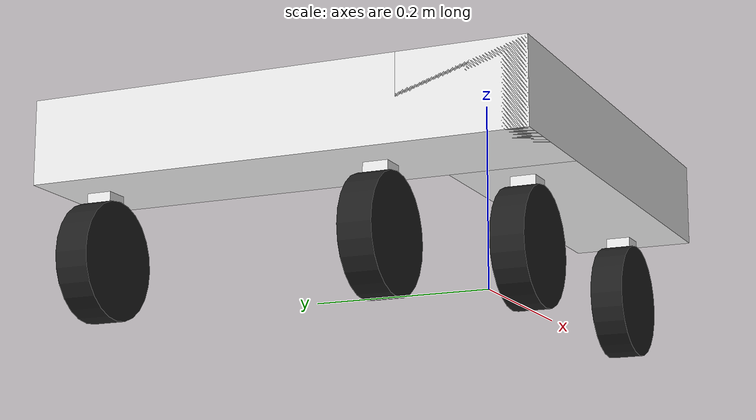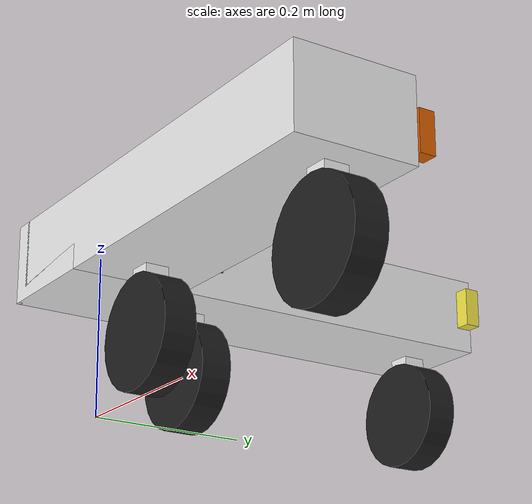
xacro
<?xml version="1.0"?>
<robot xmlns:xacro="http://www.ros.org/wiki/xacro" name="AR_0">

    <!-- robot parts -->
	<xacro:include filename="$(find ar_sim)/urdf/wheel.urdf.xacro" />
	<xacro:include filename="$(find ar_sim)/urdf/steering_column.urdf.xacro" />
    <xacro:include filename="$(find ar_sim)/urdf/arm.urdf.xacro" />

    <!-- actuation -->
    <xacro:include filename="$(find ar_sim)/urdf/transmission.urdf.xacro" />

    <!-- sensors -->
    <xacro:include filename="$(find ar_sim)/urdf/tof.urdf.xacro" />

    <!-- materials -->
    <xacro:include filename="$(find ar_sim)/urdf/materials.xacro" />

	<!-- PROPERTIES -->
	<!--All units in m-kg-s-radians unit system -->
	<xacro:property name="M_PI" value="3.1415926535897931" />
    <xacro:property name="M_PI_2" value="1.570796327" />
    <xacro:property name="M_PI_4" value="0.7853981635" />
	<xacro:property name="DEG_TO_RAD" value="0.017453293" />

	<!-- friction coefficients: https://www.engineeringtoolbox.com/friction-coefficients-d_778.html -->
	<xacro:property name="MU_1" value="0.8" />
	<xacro:property name="MU_2" value="0.8" />

	<!-- mass (kg) -->
	<xacro:property name="arm_mass" value="10" />
	<xacro:property name="steer_link_mass" value="0.5" />
	<xacro:property name="wheel_mass" value="4" />

	<!-- robot dimensions (m) -->
	<xacro:property name="robot_height" value="0.2" />
	<xacro:property name="axis_offset" value="0.125" />
	<xacro:property name="steer_link_width" value="0.03" />
	<xacro:property name="wheel_radius" value="0.07" />
	<xacro:property name="wheel_width" value="0.04" />
	<xacro:property name="arm_length" value="0.6" />
	<xacro:property name="arm_width" value="0.15" />
	<xacro:property name="arm_thickness" value="0.1" />
    <xacro:property name="steer_link_length" value="${arm_thickness/2+wheel_radius}" />

    <!-- sensor properties -->
    <xacro:property name="TOF_rate" value="30" /> <!-- Hz -->
    <xacro:property name="visualize_TOFs" value="true" />

	 <!-- Macros for calculating inertia -->
	<xacro:macro name="cylinder_inertia" params="m r h">
		<inertia  ixx="${m*(3*r*r+h*h)/12}" ixy = "0" ixz = "0"
		iyy="${m*(3*r*r+h*h)/12}" iyz = "0" izz="${m*r*r/2}" />
	</xacro:macro>

	<xacro:macro name="cuboid_inertia" params="m w h l">
		<inertia  ixx="${m*(h*h+l*l)/12}" ixy = "0" ixz = "0"
		iyy="${m*(w*w+l*l)/12}" iyz = "0" izz="${m*(h*h+w*w)/12}" />
	</xacro:macro>

	<!-- BASE FOOTPRINT -->
    <link name="base_footprint">
		<visual>
			<origin xyz="0 0 0" rpy="0 0 0" />
			<geometry>
				<box size="0.001 0.001 0.001" />
			</geometry>
		</visual>
	</link>

	<gazebo reference="base_footprint">
		<turnGravityOff>false</turnGravityOff>
	</gazebo>

	<!-- left arm -->
	<xacro:arm arm_name="left_arm" arm_length="${arm_length}" arm_width="${arm_width}"
						arm_thickness="${arm_thickness}" arm_mass="${arm_mass}"
						rotation_angle="0" X="${(arm_length-arm_width)/2}" Y="0" robot_height="${robot_height}" />

	<!-- right arm -->
	<xacro:arm arm_name="right_arm" arm_length="${arm_length}" arm_width="${arm_width}"
						arm_thickness="${arm_thickness}" arm_mass="${arm_mass}"
						rotation_angle="${M_PI_2}" X="0" Y="${(arm_length-arm_width)/2}" robot_height="${robot_height}" />

	<!-- Joint: connect arms to base -->
	<joint name="base_footprint_joint_l" type="fixed">
		<origin xyz="0 0 0" rpy="0 0 0" />
		<parent link="base_footprint"/>
		<child link="left_arm" />
	</joint>

	<joint name="base_footprint_joint_r" type="fixed">
		<origin xyz="0 0 0" rpy="0 0 0" />
		<parent link="base_footprint"/>
		<child link="right_arm" />
	</joint>

	<!-- steering link l1 -->
	<xacro:steering_column steering_link_name="steering_link_l1" steer_link_width=
		"${steer_link_width}" steer_link_length="${steer_link_length}" steer_link_mass="${steer_link_mass}" robot_height="${robot_height}" />

	<!-- steering link l2 -->
	<xacro:steering_column steering_link_name="steering_link_l2" steer_link_width=
		"${steer_link_width}" steer_link_length="${steer_link_length}" steer_link_mass="${steer_link_mass}" robot_height="${robot_height}" />

	<!-- steering link r1 -->
	<xacro:steering_column steering_link_name="steering_link_r1" steer_link_width=
		"${steer_link_width}" steer_link_length="${steer_link_length}" steer_link_mass="${steer_link_mass}" robot_height="${robot_height}" />

	<!-- steering link r2 -->
	<xacro:steering_column steering_link_name="steering_link_r2" steer_link_width=
		"${steer_link_width}" steer_link_length="${steer_link_length}" steer_link_mass="${steer_link_mass}" robot_height="${robot_height}" />

	<!-- yaw joint l1 -->
	<joint name="yaw_joint_l1" type="continuous">
		<parent link="left_arm"/>
		<child link="steering_link_l1"/>
		<origin xyz="${axis_offset} 0 0" rpy="0 0 ${M_PI}"/>
		<axis xyz="0 0 1"/>
	</joint>

	<!-- yaw joint l2 -->
	<joint name="yaw_joint_l2" type="continuous">
		<parent link="left_arm"/>
		<child link="steering_link_l2"/>
		<origin xyz="${arm_length-axis_offset} 0 0" rpy="0 0 ${M_PI}"/>
		<axis xyz="0 0 1"/>
	</joint>

	<!-- yaw joint r1 -->
	<joint name="yaw_joint_r1" type="continuous">
		<parent link="right_arm"/>
		<child link="steering_link_r1"/>
		<origin xyz="0 ${axis_offset} 0" rpy="0 0 ${M_PI}"/>
		<axis xyz="0 0 1"/>
	</joint>

	<!-- yaw joint r2 -->
	<joint name="yaw_joint_r2" type="continuous">
		<parent link="right_arm"/>
		<child link="steering_link_r2"/>
		<origin xyz="0 ${arm_length-axis_offset} 0" rpy="0 0 ${M_PI}"/>
		<axis xyz="0 0 1"/>
	</joint>

	<!-- wheel-r1 -->
	<xacro:wheel wheel_name="r1_wheel" wheel_width="${wheel_width}" wheel_radius="
		${wheel_radius}" wheel_mass="${wheel_mass}" MU_1="${MU_1}" MU_2="${MU_2}"
		M_PI_2="${M_PI_2}"/>

	<!-- wheel-r2 -->
	<xacro:wheel wheel_name="r2_wheel" wheel_width="${wheel_width}" wheel_radius="
		${wheel_radius}" wheel_mass="${wheel_mass}" MU_1="${MU_1}" MU_2="${MU_2}"
		M_PI_2="${M_PI_2}"/>

	<!-- wheel-l1 -->
	<xacro:wheel wheel_name="l1_wheel" wheel_width="${wheel_width}" wheel_radius="
		${wheel_radius}" wheel_mass="${wheel_mass}" MU_1="${MU_1}" MU_2="${MU_2}"
		M_PI_2="${M_PI_2}"/>

	<!-- wheel-l2 -->
	<xacro:wheel wheel_name="l2_wheel" wheel_width="${wheel_width}" wheel_radius="
		${wheel_radius}" wheel_mass="${wheel_mass}" MU_1="${MU_1}" MU_2="${MU_2}"
		M_PI_2="${M_PI_2}"/>

	<!-- drive joint r1 -->
	<joint name="drive_joint_r1" type="continuous">
		<parent link="steering_link_r1"/>
		<child link="r1_wheel"/>
		<origin xyz="0 0 ${wheel_radius}" rpy="0 0 -${M_PI_2}"/>
	</joint>

	<!-- drive joint r2 -->
	<joint name="drive_joint_r2" type="continuous">
		<parent link="steering_link_r2"/>
		<child link="r2_wheel"/>
		<origin xyz="0 0 ${wheel_radius}" rpy="0 0 -${M_PI_2}"/>
	</joint>

	<!-- drive joint l1 -->
	<joint name="drive_joint_l1" type="continuous">
		<parent link="steering_link_l1"/>
		<child link="l1_wheel"/>
		<origin xyz="0 0 ${wheel_radius}" rpy="0 0 -${M_PI_2}"/>
	</joint>

	<!-- drive joint l2 -->
	<joint name="drive_joint_l2" type="continuous">
		<parent link="steering_link_l2"/>
		<child link="l2_wheel"/>
		<origin xyz="0 0 ${wheel_radius}" rpy="0 0 -${M_PI_2}"/>
	</joint>

	<!-- Transmission: drive, select: effort/vel/pos interfaces -->
	<xacro:set_transmission transmission_name="l1_wheel_joint_trans" motor_name="l1_wheel_motor" interface="VelocityJointInterface" joint_name="drive_joint_l1" />

	<xacro:set_transmission transmission_name="l2_wheel_joint_trans" motor_name="l2_wheel_motor" interface="VelocityJointInterface" joint_name="drive_joint_l2" />

	<xacro:set_transmission transmission_name="r1_wheel_joint_trans" motor_name=
		"r1_wheel_motor" interface="VelocityJointInterface" joint_name="drive_joint_r1" />

	<xacro:set_transmission transmission_name="r2_wheel_joint_trans" motor_name=
		"r2_wheel_motor" interface="VelocityJointInterface" joint_name="drive_joint_r2" />

	<!-- Transmission: yaw -->
	<xacro:set_transmission transmission_name="l1_yaw_joint_trans" motor_name=
		"l1_steer_motor" interface="PositionJointInterface" joint_name="yaw_joint_l1" />

	<xacro:set_transmission transmission_name="l2_yaw_joint_trans" motor_name=
		"l2_steer_motor" interface="PositionJointInterface" joint_name="yaw_joint_l2" />

	<xacro:set_transmission transmission_name="r1_yaw_joint_trans" motor_name=
		"r1_steer_motor" interface="PositionJointInterface" joint_name="yaw_joint_r1" />

	<xacro:set_transmission transmission_name="r2_yaw_joint_trans" motor_name=
		"r2_steer_motor" interface="PositionJointInterface" joint_name="yaw_joint_r2" />

	<!-- ros_control plugin -->
	<gazebo>
		<plugin name="gazebo_ros_control" filename="libgazebo_ros_control.so">
			<robotBaseFrame>base_footprint</robotBaseFrame>
			<legacyModeNS>true</legacyModeNS>
		</plugin>
	</gazebo>

    <!-- TOF sensors -->
    <xacro:tof_sensor name="tof1" base="base_footprint" xyz="${arm_thickness} ${arm_length-arm_thickness} ${robot_height}"
                      rpy="0 0 0" rate="${TOF_rate}" visualize="${visualize_TOFs}"/>
    <xacro:tof_sensor name="tof2" base="base_footprint" xyz="${arm_thickness} ${arm_thickness} ${robot_height}"
                      rpy="0 0 ${M_PI_4}" rate="${TOF_rate}" visualize="${visualize_TOFs}"/>
    <xacro:tof_sensor name="tof3" base="base_footprint" xyz="${arm_length-arm_thickness} ${arm_thickness} ${robot_height}"
                      rpy="0 0 ${M_PI_2}" rate="${TOF_rate}" visualize="${visualize_TOFs}"/>

</robot>

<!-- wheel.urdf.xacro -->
<robot name="wheel" xmlns:xacro="http://www.ros.org/wiki/xacro">

	<xacro:macro name="wheel" params="wheel_name wheel_width wheel_radius wheel_mass
										MU_1 MU_2 M_PI_2">
		<link name="${wheel_name}">
			<visual>
				<origin xyz="0 0 0" rpy="0 ${M_PI_2} 0" />
				<geometry>
					<cylinder length="${wheel_width}" radius="${wheel_radius}" />
				</geometry>
				<material name="black"/>
			</visual>
			<collision>
				<origin xyz="0 0 0" rpy="0 ${M_PI_2} 0" />
				<geometry>
					<cylinder length="${wheel_width}" radius="${wheel_radius}" />
				</geometry>
			</collision>
			<inertial>
				<mass value="${wheel_mass}"/>
				<xacro:cylinder_inertia  m="${wheel_mass}" r="${wheel_radius}" h="${wheel_width}" />
			</inertial>
			<surface>
				<friction>
					<ode>
						<mu1 value="${MU_1}" />
						<mu2 value="${MU_2}" />
					</ode>
				</friction>
			</surface>
		</link>

		<gazebo reference="${wheel_name}">
			<turnGravityOff>false</turnGravityOff>
			<material>Gazebo/Black</material>
		</gazebo>

	</xacro:macro>
</robot>

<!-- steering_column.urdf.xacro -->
<robot name="wheel" xmlns:xacro="http://www.ros.org/wiki/xacro">

	<xacro:macro name="steering_column" params="steering_link_name steer_link_width steer_link_length steer_link_mass robot_height">

		<link name="${steering_link_name}">
			<visual>
				<geometry>
					<box size="${steer_link_width} ${steer_link_width} ${steer_link_length}"/>
				</geometry>
				<origin rpy="0 0 0" xyz="0 0 ${robot_height-steer_link_length/2}"/>
				<material name="white"/>
			</visual>
			<collision>
				<geometry>
					<box size="${steer_link_width} ${steer_link_width} ${steer_link_length/4}"/>
				</geometry>
				<origin rpy="0 0 0" xyz="0 0 ${robot_height-steer_link_length/2}"/>
			</collision>
			<inertial>
				<mass value="${steer_link_mass}"/>
				<xacro:cuboid_inertia m="${steer_link_mass}" w="${steer_link_width}" h="
					${steer_link_width}" l="${steer_link_length}" />
			</inertial>
		</link>

		<gazebo reference="${steering_link_name}">
			<turnGravityOff>false</turnGravityOff>
		</gazebo>
	</xacro:macro>
</robot>

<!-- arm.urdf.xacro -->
<robot name="arm" xmlns:xacro="http://www.ros.org/wiki/xacro">

	<xacro:macro name="arm" params="arm_name arm_length arm_width arm_thickness arm_mass
							 rotation_angle X Y robot_height">

		<link name="${arm_name}">
			<visual>
				<geometry>
					<box size="${arm_length} ${arm_width} ${arm_thickness}"/>
				</geometry>
				<origin rpy="0 0 ${rotation_angle}" xyz="${X} ${Y} ${robot_height}"/>
				<material name="white"/>
			</visual>
			<collision>
				<geometry>
					<box size="${arm_length} ${arm_width} ${arm_thickness}"/>
				</geometry>
				<origin rpy="0 0 ${rotation_angle}" xyz="${X} ${Y} ${robot_height}"/>
			</collision>
			<inertial>
				<mass value="${arm_mass}"/>
				<inertia ixx="${arm_mass}" ixy="0.0" ixz="0.0" iyy="${arm_mass}"
					iyz="0.0" izz="${arm_mass}"/>
			</inertial>
		</link>

		<gazebo reference="${arm_name}">
			<turnGravityOff>false</turnGravityOff>
		</gazebo>

	</xacro:macro>
</robot>

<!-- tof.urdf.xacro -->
<robot xmlns:xacro="http://www.ros.org/wiki/xacro">

<xacro:macro name="tof_sensor" params="name base xyz rpy rate visualize">
<!-- TOF sensor -->
    <joint name="${name}_parent_joint" type="fixed">
        <origin xyz="${xyz}" rpy="${rpy}"/>
        <parent link="${base}"/>
        <child link="${name}"/>
    </joint>

    <link name="${name}">
        <inertial>
            <mass value="0.01" />
            <origin xyz="0 0 0" />
            <inertia ixx="0.001"  ixy="0.0"  ixz="0.0"
            iyy="0.001"  iyz="0.0"
                izz="0.001" />
        </inertial>
        <visual>
            <origin xyz="0 0 0" rpy="0 0 0"/>
            <geometry>
                <box size="0.02 0.02 0.05" />
            </geometry>
        </visual>
    </link>

    <gazebo reference="${name}">
        <sensor name="${name}" type="ray">
            <pose>0 0 0 0 0 0</pose>
            <ray>
                <scan>
                    <horizontal>
                        <resolution>1</resolution>
                        <max_angle>0</max_angle> <!-- rads -->
                        <min_angle>0</min_angle>
                        <samples>1</samples>
                    </horizontal>
                    </scan>

                    <range>
                      <min>0.01</min>
                      <max>4</max>
                      <resolution>0.01</resolution>
                    </range>
            </ray>
            <plugin name="laser" filename="libgazebo_ros_laser.so">
                <topicName>sim_sensor/${name}</topicName>
                <frameName>${name}</frameName>
            </plugin>
            <always_on>1</always_on>
            <update_rate>${rate}</update_rate>
            <visualize>${visualize}</visualize>
        </sensor>
    </gazebo>

</xacro:macro>

</robot>
